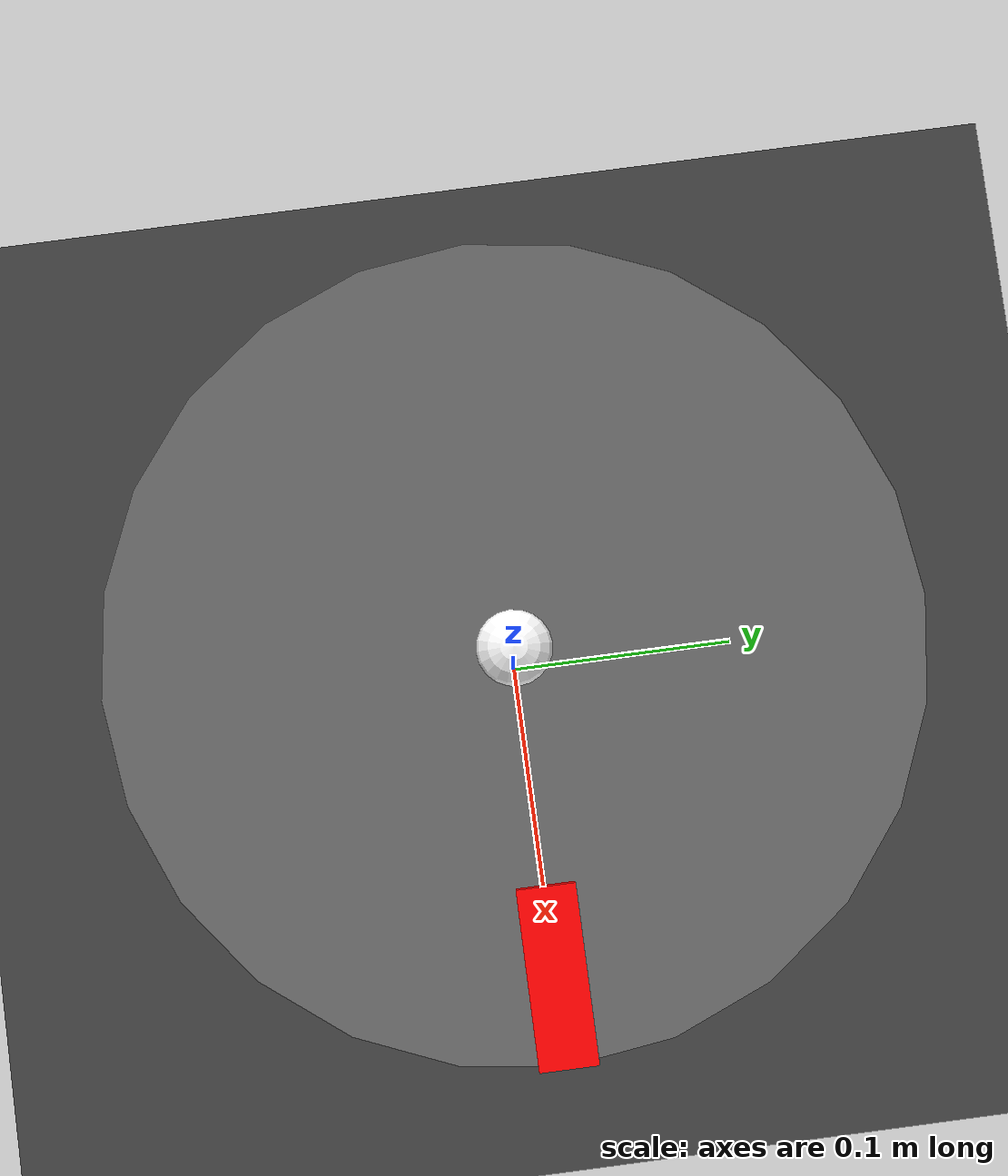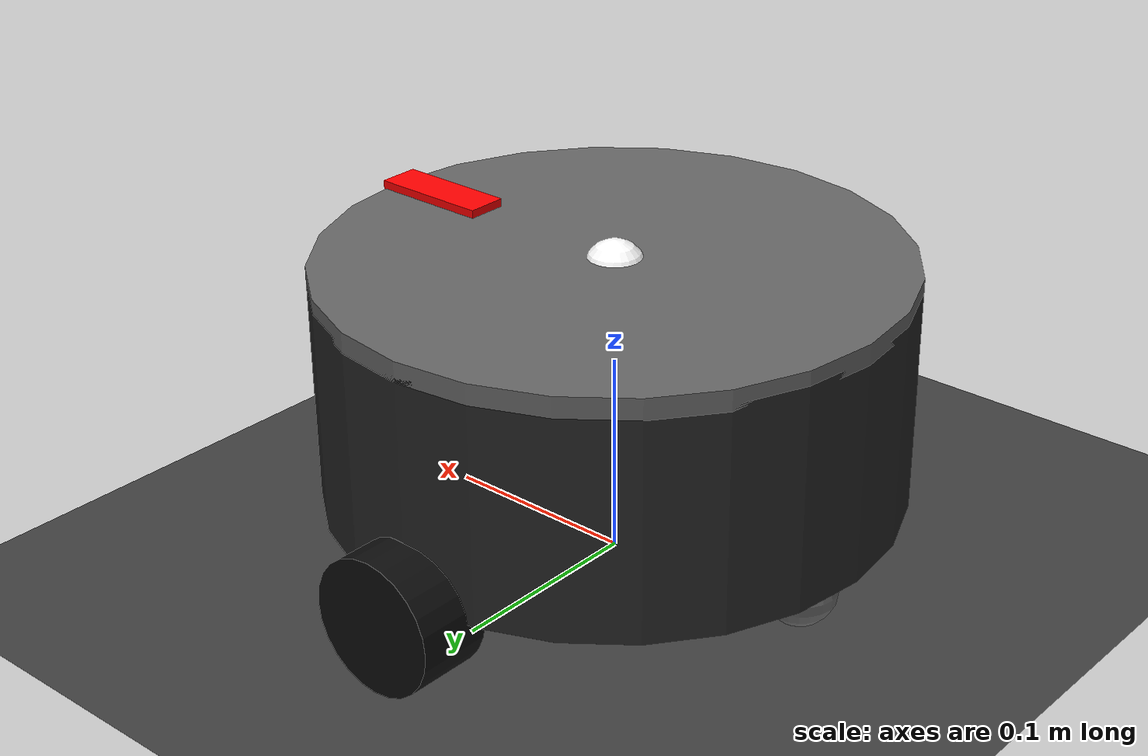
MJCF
<mujoco model="turtlebot3_waffle_pi">
  <compiler angle="radian" autolimits="true"/>
  <option timestep="0.002" gravity="0 0 -9.81" integrator="implicitfast" cone="elliptic"/>

  <default>
    <joint damping="0.2"/>
    <geom contype="1" conaffinity="1" friction="1.0 0.05 0.01" solref="0.01 1" solimp="0.9 0.95 0.001"/>
  </default>

  <asset>
    <texture type="skybox" builtin="gradient" rgb1="0.3 0.5 0.7" rgb2="0 0 0" width="512" height="512"/>
    <texture name="grid" type="2d" builtin="checker" rgb1="0.2 0.2 0.2" rgb2="0.3 0.3 0.3" width="512" height="512"/>
    <material name="grid" texture="grid" texrepeat="8 8" reflectance="0.1"/>
    <material name="body_mat" rgba="0.15 0.15 0.15 1"/>
    <material name="wheel_mat" rgba="0.05 0.05 0.05 1"/>
    <material name="caster_mat" rgba="0.4 0.4 0.4 1"/>
  </asset>

  <worldbody>
    <light pos="0 0 3" dir="0 0 -1" diffuse="0.8 0.8 0.8"/>
    <geom name="floor" type="plane" size="5 5 0.1" material="grid"/>

    <!-- Base frame axes for reference at the origin -->
    <site name="world_origin" pos="0 0 0.001" size="0.01" rgba="1 1 1 1"/>

    <body name="base" pos="0 0 0.066">
      <!-- free joint: robot can translate/rotate freely, driven by wheel torques -->
      <freejoint name="base_free"/>
      <inertial pos="0 0 0" mass="1.8" diaginertia="0.02 0.02 0.03"/>

      <!-- Waffle Pi footprint approx: radius 0.14 m. Raised + shortened so it clears
           the ground (wheels/caster bear the load, not the belly). -->
      <geom name="base_geom" type="cylinder" pos="0 0 0.025" size="0.14 0.055" material="body_mat" mass="0" contype="0" conaffinity="0"/>
      <geom name="top_plate" type="cylinder" pos="0 0 0.082" size="0.14 0.005" material="caster_mat" mass="0" contype="0" conaffinity="0"/>

      <!-- Heading marker so you can SEE which way is "forward" (+X of body frame) -->
      <geom name="heading_arrow" type="box" pos="0.11 0 0.086" size="0.03 0.01 0.005" rgba="1 0 0 1" mass="0" contype="0" conaffinity="0"/>

      <!-- Body-frame visualization site: this is what we read the rotation matrix from -->
      <site name="body_frame" pos="0 0 0.08" size="0.015" rgba="1 1 1 1"/>

      <!-- Wheels: diameter 66mm -> radius 0.033, separation 0.287 m -->
      <body name="wheel_left" pos="0 0.1435 -0.033">
        <joint name="joint_wheel_left" type="hinge" axis="0 1 0" damping="0.15"/>
        <geom name="geom_wheel_left" type="cylinder" size="0.033 0.018" quat="0.7071068 0.7071068 0 0"
              material="wheel_mat" friction="1.2 0.05 0.01" mass="0.05"/>
      </body>

      <body name="wheel_right" pos="0 -0.1435 -0.033">
        <joint name="joint_wheel_right" type="hinge" axis="0 1 0" damping="0.15"/>
        <geom name="geom_wheel_right" type="cylinder" size="0.033 0.018" quat="0.7071068 0.7071068 0 0"
              material="wheel_mat" friction="1.2 0.05 0.01" mass="0.05"/>
      </body>

      <!-- Passive caster (ball) at the rear for stability -->
      <body name="caster" pos="-0.11 0 -0.045">
        <joint name="caster_free" type="ball" damping="0.001"/>
        <geom name="caster_geom" type="sphere" size="0.018" material="caster_mat" friction="0.2 0.005 0.0001" mass="0.02"/>
      </body>
    </body>
  </worldbody>

  <actuator>
    <velocity name="act_wheel_left"  joint="joint_wheel_left"  kv="8" ctrlrange="-6 6"/>
    <velocity name="act_wheel_right" joint="joint_wheel_right" kv="8" ctrlrange="-6 6"/>
  </actuator>
</mujoco>
